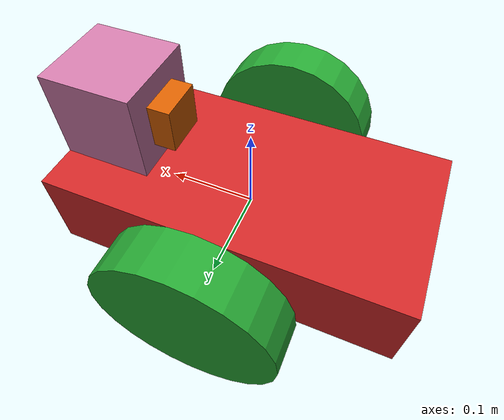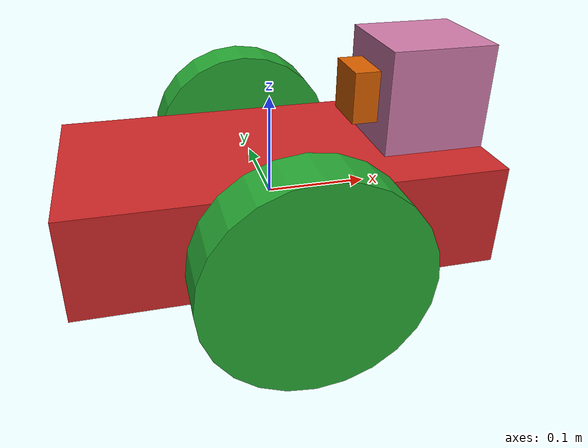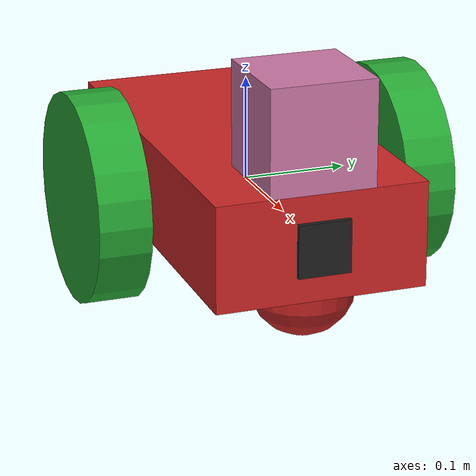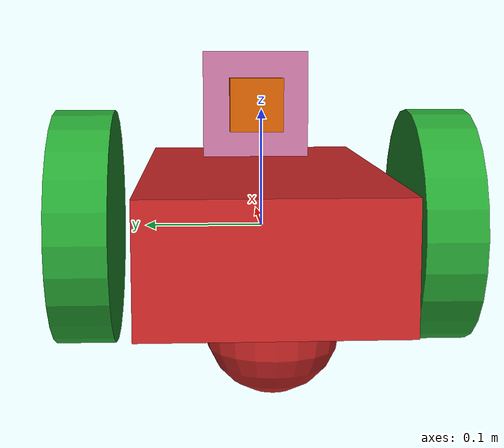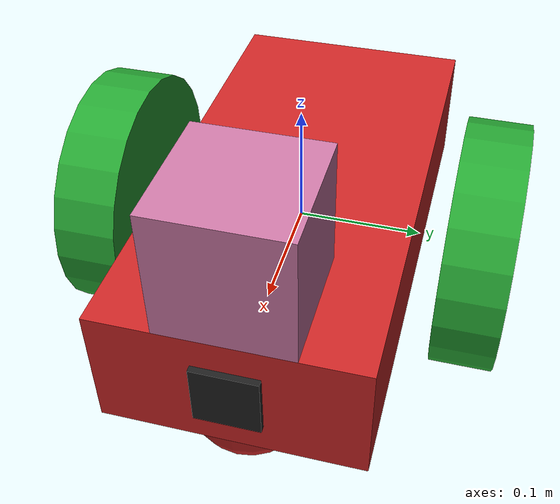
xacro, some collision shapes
<?xml version='1.0'?>

<robot name="my_robot" xmlns:xacro="http://www.ros.org/wiki/xacro">
<xacro:include filename="$(find my_robot)/urdf/my_robot.gazebo" />

  <link name="robot_footprint"></link>

  <joint name="robot_footprint_joint" type="fixed">
    <origin xyz="0 0 0" rpy="0 0 0" />
    <parent link="robot_footprint"/>
    <child link="chassis" />
  </joint>

  <link name='chassis'>
    <pose>0 0 0.1 0 0 0</pose>

    <inertial>
      <mass value="15.0"/>
      <origin xyz="0.0 0 0" rpy=" 0 0 0"/>
      <inertia
          ixx="0.1" ixy="0" ixz="0"
          iyy="0.1" iyz="0"
          izz="0.1"
      />
    </inertial>

    <collision name='collision'>
      <origin xyz="0 0 0" rpy=" 0 0 0"/>
      <geometry>
        <box size=".4 .2 .1"/>
      </geometry>
    </collision>

    <visual name='chassis_visual'>
      <origin xyz="0 0 0" rpy=" 0 0 0"/>
      <geometry>
        <box size=".4 .2 .1"/>
      </geometry>
    </visual>

    <collision name='back_caster_collision'>
      <origin xyz="-0.15 0 -0.05" rpy=" 0 0 0"/>
      <geometry>
        <sphere radius="0.0499"/>
      </geometry>
    </collision>

    <visual name='back_caster_visual'>
      <origin xyz="-0.15 0 -0.05" rpy=" 0 0 0"/>
      <geometry>
        <sphere radius="0.05"/>
      </geometry>
    </visual>

    <collision name='front_caster_collision'>
      <origin xyz="0.15 0 -0.05" rpy=" 0 0 0"/>
      <geometry>
        <sphere radius="0.0499"/>
      </geometry>
    </collision>

    <visual name='front_caster_visual'>
      <origin xyz="0.15 0 -0.05" rpy=" 0 0 0"/>
      <geometry>
        <sphere radius="0.05"/>
      </geometry>
    </visual>

  </link>
  <gazebo reference='chassis'>
	<material>Gazebo/Red</material>
  </gazebo>

  <link name='left_wheel'>
    <pose>0 0 0.1 0 0 0</pose>

    <inertial>
      <mass value="5.0"/>
      <origin xyz="0 0 0" rpy=" 0 1.5707 1.5707"/>
      <inertia
          ixx="0.1" ixy="0" ixz="0"
          iyy="0.1" iyz="0"
          izz="0.1"
      />
    </inertial>

    <collision name='collision'>
      <origin xyz="0 0 0" rpy=" 0 1.5707 1.5707"/>
      <geometry>
        <cylinder radius="0.1" length="0.05"/>
      </geometry>
    </collision>

    <visual name='left_wheel_visual'>
      <origin xyz="0 0 0" rpy=" 0 1.5707 1.5707"/>
      <geometry>
        <cylinder radius="0.1" length="0.05"/>
      </geometry>
    </visual>

  </link>

  <gazebo reference='left_wheel'>
	<material>Gazebo/Green</material>
  </gazebo>

  <joint type="continuous" name="left_wheel_hinge">
    <origin xyz="0 0.15 0" rpy="0 0 0"/>
    <child link="left_wheel"/>
    <parent link="chassis"/>
    <axis xyz="0 1 0" rpy="0 0 0"/>
    <limit effort="10000" velocity="1000"/>
    <dynamics damping="1.0" friction="1.0"/>
  </joint>

  <link name='right_wheel'>
    <pose>0 0 0.1 0 0 0</pose>

    <inertial>
      <mass value="5.0"/>
      <origin xyz="0 0 0" rpy=" 0 1.5707 1.5707"/>
      <inertia
          ixx="0.1" ixy="0" ixz="0"
          iyy="0.1" iyz="0"
          izz="0.1"
      />
    </inertial>

    <collision name='collision'>
      <origin xyz="0 0 0" rpy=" 0 1.5707 1.5707"/>
      <geometry>
        <cylinder radius="0.1" length="0.05"/>
      </geometry>
    </collision>

    <visual name='right_wheel_visual'>
      <origin xyz="0 0 0" rpy=" 0 1.5707 1.5707"/>
      <geometry>
        <cylinder radius="0.1" length="0.05"/>
      </geometry>
    </visual>

  </link>

  <gazebo reference='right_wheel'>
	<material>Gazebo/Green</material>
  </gazebo>

  <joint type="continuous" name="right_wheel_hinge">
    <origin xyz="0 -0.15 0" rpy="0 0 0"/>
    <child link="right_wheel"/>
    <parent link="chassis"/>
    <axis xyz="0 1 0" rpy="0 0 0"/>
    <limit effort="10000" velocity="1000"/>
    <dynamics damping="1.0" friction="1.0"/>
  </joint>

  <link name='camera'>
    <pose>0 0 0.1 0 0 0</pose>

    <inertial>
      <mass value="0.1"/>
      <origin xyz="0 0 0" rpy=" 0 0 0"/>
      <inertia
          ixx="1e-6" ixy="0" ixz="0"
          iyy="1e-6" iyz="0"
          izz="1e-6"
      />
    </inertial>

    <collision name='camera_collision'>
      <origin xyz="0 0 0" rpy=" 0 0 0"/>
      <geometry>
        <box size="0.01 0.05 0.05"/>
      </geometry>
    </collision>

    <visual name='camera_visual'>
      <origin xyz="0 0 0" rpy=" 0 0 0"/>
      <geometry>
        <box size="0.01 0.05 0.05"/>
      </geometry>
    </visual>

  </link>

  <gazebo reference='camera'>
	<material>Gazebo/Black</material>
  </gazebo>

  <joint type="fixed" name="camera_joint">
    <origin xyz="0.2 0 0" rpy="0 0 0"/>
    <child link="camera"/>
    <parent link="chassis"/>
    <axis xyz="0 1 0" rpy="0 0 0"/>
    <limit effort="10000" velocity="1000"/>
    <dynamics damping="1.0" friction="1.0"/>
  </joint>

<link name="camera_rgbd">
     <visual>
      <origin xyz="0 0 0" rpy="0 0 0"/>
       <geometry>
        <box size=".05 .05 .05"/>
      </geometry>
    </visual>

    <inertial>
      <mass value="0.1"/>
      <origin xyz="0 0 0" rpy=" 0 0 0"/>
      <inertia
          ixx="0.000001" ixy="0" ixz="0"
          iyy="0.000001" iyz="0"
          izz="0.000001"
      />
    </inertial>

    <collision>
      <origin xyz="0 0 0" rpy="0 0 0"/>
       <geometry>
        <box size=".05 .05 .05"/>
      </geometry>
    </collision>

</link>

  <joint name="rgbd_joint" type="fixed">
    <origin xyz="0.1 0 0.1" rpy="-1.5707 0  -1.5707" />
    <parent link="chassis"/>
    <child link="camera_rgbd"/>
  </joint>

  <link name='hokuyo'>
    <pose>0 0 0.1 0 0 0</pose>

    <inertial>
      <mass value="1e-5"/>
      <origin xyz="0 0 0" rpy=" 0 0 0"/>
      <inertia
          ixx="1e-6" ixy="0" ixz="0"
          iyy="1e-6" iyz="0"
          izz="1e-6"
      />
    </inertial>

    <collision name='lidar_collision'>
      <origin xyz="0 0 0" rpy=" 0 0 0"/>
      <geometry>
        <box size="0.1 0.1 0.1"/>
      </geometry>
    </collision>

    <visual name='lidar_visual'>
      <origin xyz="0 0 0" rpy=" 0 0 0"/>
      <geometry>
        <mesh filename="package://my_robot/meshes/hokuyo.dae"/>
      </geometry>
    </visual>

  </link>

  <joint type="fixed" name="hokuyo_joint">
    <origin xyz="0.15 0 0.1" rpy="0 0 0"/>
    <child link="hokuyo"/>
    <parent link="chassis"/>
    <axis xyz="0 1 0" rpy="0 0 0"/>
    <limit effort="10000" velocity="1000"/>
    <dynamics damping="1.0" friction="1.0"/>
  </joint>

</robot>
